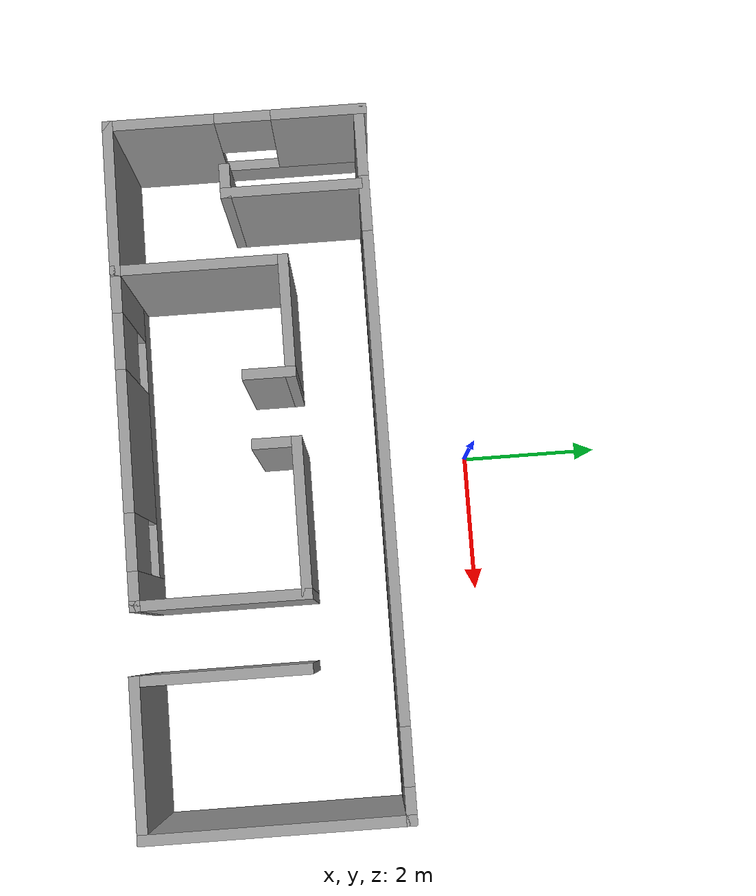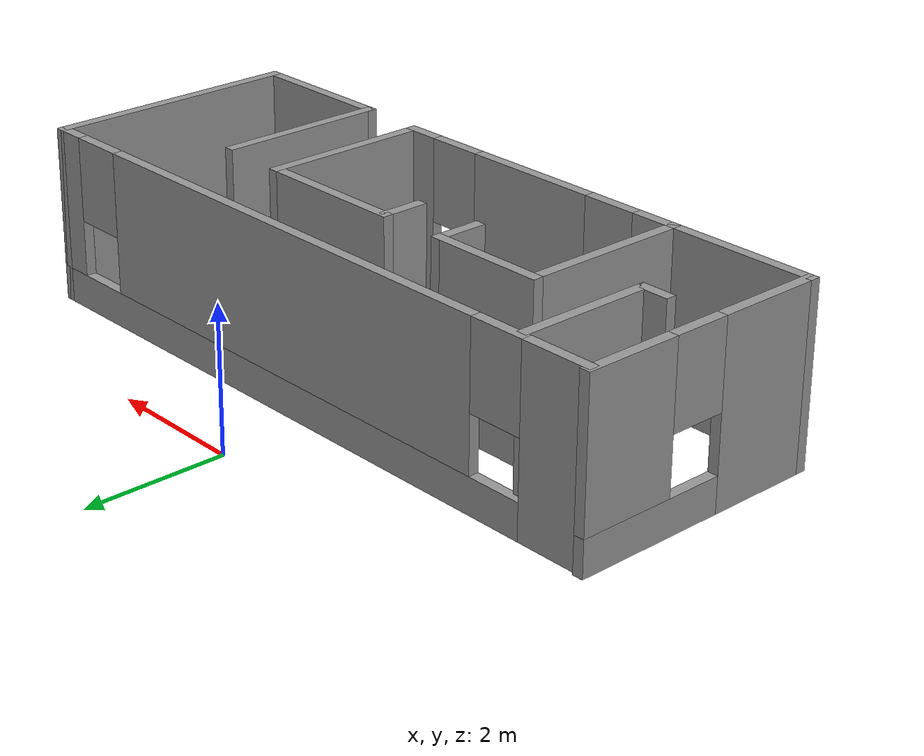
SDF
<?xml version='1.0'?>
<sdf version='1.7'>
  <model name='Hospital'>
    <pose>0.155 -2.4775 0 0 -0 0</pose>
    <link name='Wall_11'>
      <collision name='Wall_11_Collision'>
        <geometry>
          <box>
            <size>0.75 0.15 2.5</size>
          </box>
        </geometry>
        <pose>0 0 1.25 0 -0 0</pose>
      </collision>
      <visual name='Wall_11_Visual'>
        <pose>0 0 1.25 0 -0 0</pose>
        <geometry>
          <box>
            <size>0.75 0.15 2.5</size>
          </box>
        </geometry>
        <material>
          <script>
            <uri>file://media/materials/scripts/gazebo.material</uri>
            <name>Gazebo/Grey</name>
          </script>
          <ambient>1 1 1 1</ambient>
        </material>
        <meta>
          <layer>0</layer>
        </meta>
      </visual>
      <pose>-1.245 -0.3125 0 0 -0 1.5708</pose>
    </link>
    <link name='Wall_12'>
      <collision name='Wall_12_Collision'>
        <geometry>
          <box>
            <size>1.75 0.15 2.5</size>
          </box>
        </geometry>
        <pose>0 0 1.25 0 -0 0</pose>
      </collision>
      <visual name='Wall_12_Visual'>
        <pose>0 0 1.25 0 -0 0</pose>
        <geometry>
          <box>
            <size>1.75 0.15 2.5</size>
          </box>
        </geometry>
        <material>
          <script>
            <uri>file://media/materials/scripts/gazebo.material</uri>
            <name>Gazebo/Grey</name>
          </script>
          <ambient>1 1 1 1</ambient>
        </material>
        <meta>
          <layer>0</layer>
        </meta>
      </visual>
      <pose>-2.045 -0.0125 0 0 -0 3.14159</pose>
    </link>
    <link name='Wall_13'>
      <collision name='Wall_13_Collision'>
        <geometry>
          <box>
            <size>2.5 0.15 2.5</size>
          </box>
        </geometry>
        <pose>0 0 1.25 0 -0 0</pose>
      </collision>
      <visual name='Wall_13_Visual'>
        <pose>0 0 1.25 0 -0 0</pose>
        <geometry>
          <box>
            <size>2.5 0.15 2.5</size>
          </box>
        </geometry>
        <material>
          <script>
            <uri>file://media/materials/scripts/gazebo.material</uri>
            <name>Gazebo/Grey</name>
          </script>
          <ambient>1 1 1 1</ambient>
        </material>
        <meta>
          <layer>0</layer>
        </meta>
      </visual>
      <pose>-2.845 -1.1875 0 0 -0 -1.5708</pose>
    </link>
    <link name='Wall_16'>
      <collision name='Wall_16_Collision'>
        <geometry>
          <box>
            <size>2.5 0.15 2.5</size>
          </box>
        </geometry>
        <pose>0 0 1.25 0 -0 0</pose>
      </collision>
      <visual name='Wall_16_Visual'>
        <pose>0 0 1.25 0 -0 0</pose>
        <geometry>
          <box>
            <size>2.5 0.15 2.5</size>
          </box>
        </geometry>
        <material>
          <script>
            <uri>file://media/materials/scripts/gazebo.material</uri>
            <name>Gazebo/Grey</name>
          </script>
          <ambient>1 1 1 1</ambient>
        </material>
        <meta>
          <layer>0</layer>
        </meta>
      </visual>
      <pose>1.835 -1.1675 0 0 -0 -1.5708</pose>
    </link>
    <link name='Wall_17'>
      <collision name='Wall_17_Collision'>
        <geometry>
          <box>
            <size>0.15 0.15 2.5</size>
          </box>
        </geometry>
        <pose>0 0 1.25 0 -0 0</pose>
      </collision>
      <visual name='Wall_17_Visual'>
        <pose>0 0 1.25 0 -0 0</pose>
        <geometry>
          <box>
            <size>0.15 0.15 2.5</size>
          </box>
        </geometry>
        <material>
          <script>
            <uri>file://media/materials/scripts/gazebo.material</uri>
            <name>Gazebo/Grey</name>
          </script>
          <ambient>1 1 1 1</ambient>
        </material>
        <meta>
          <layer>0</layer>
        </meta>
      </visual>
      <pose>1.835 -2.3425 0 0 -0 0</pose>
    </link>
    <link name='Wall_18'>
      <pose>-0.505 -2.3525 0 0 -0 -3.13732</pose>
      <visual name='Wall_18_Visual_0'>
        <pose>-2.13763 0 1.25 0 -0 0</pose>
        <geometry>
          <box>
            <size>0.554778 0.15 2.5</size>
          </box>
        </geometry>
        <material>
          <script>
            <uri>file://media/materials/scripts/gazebo.material</uri>
            <name>Gazebo/Grey</name>
          </script>
          <ambient>1 1 1 1</ambient>
        </material>
        <meta>
          <layer>0</layer>
        </meta>
      </visual>
      <collision name='Wall_18_Collision_0'>
        <geometry>
          <box>
            <size>0.554778 0.15 2.5</size>
          </box>
        </geometry>
        <pose>-2.13763 0 1.25 0 -0 0</pose>
      </collision>
      <visual name='Wall_18_Visual_1'>
        <pose>0.277389 0 0.25 0 -0 0</pose>
        <geometry>
          <box>
            <size>4.27526 0.15 0.5</size>
          </box>
        </geometry>
        <material>
          <script>
            <uri>file://media/materials/scripts/gazebo.material</uri>
            <name>Gazebo/Grey</name>
          </script>
          <ambient>1 1 1 1</ambient>
        </material>
        <meta>
          <layer>0</layer>
        </meta>
      </visual>
      <collision name='Wall_18_Collision_1'>
        <geometry>
          <box>
            <size>4.27526 0.15 0.5</size>
          </box>
        </geometry>
        <pose>0.277389 0 0.25 0 -0 0</pose>
      </collision>
      <visual name='Wall_18_Visual_2'>
        <pose>-0.060213 0 1.5 0 -0 0</pose>
        <geometry>
          <box>
            <size>2.00006 0.15 2</size>
          </box>
        </geometry>
        <material>
          <script>
            <uri>file://media/materials/scripts/gazebo.material</uri>
            <name>Gazebo/Grey</name>
          </script>
          <ambient>1 1 1 1</ambient>
        </material>
        <meta>
          <layer>0</layer>
        </meta>
      </visual>
      <collision name='Wall_18_Collision_2'>
        <geometry>
          <box>
            <size>2.00006 0.15 2</size>
          </box>
        </geometry>
        <pose>-0.060213 0 1.5 0 -0 0</pose>
      </collision>
      <visual name='Wall_18_Visual_3'>
        <pose>2.07742 0 1.5 0 -0 0</pose>
        <geometry>
          <box>
            <size>0.675205 0.15 2</size>
          </box>
        </geometry>
        <material>
          <script>
            <uri>file://media/materials/scripts/gazebo.material</uri>
            <name>Gazebo/Grey</name>
          </script>
          <ambient>1 1 1 1</ambient>
        </material>
        <meta>
          <layer>0</layer>
        </meta>
      </visual>
      <collision name='Wall_18_Collision_3'>
        <geometry>
          <box>
            <size>0.675205 0.15 2</size>
          </box>
        </geometry>
        <pose>2.07742 0 1.5 0 -0 0</pose>
      </collision>
      <visual name='Wall_18_Visual_4'>
        <pose>-1.46024 0 1.9 0 -0 0</pose>
        <geometry>
          <box>
            <size>0.8 0.15 1.2</size>
          </box>
        </geometry>
        <material>
          <script>
            <uri>file://media/materials/scripts/gazebo.material</uri>
            <name>Gazebo/Grey</name>
          </script>
          <ambient>1 1 1 1</ambient>
        </material>
        <meta>
          <layer>0</layer>
        </meta>
      </visual>
      <collision name='Wall_18_Collision_4'>
        <geometry>
          <box>
            <size>0.8 0.15 1.2</size>
          </box>
        </geometry>
        <pose>-1.46024 0 1.9 0 -0 0</pose>
      </collision>
      <visual name='Wall_18_Visual_5'>
        <pose>1.33982 0 1.9 0 -0 0</pose>
        <geometry>
          <box>
            <size>0.8 0.15 1.2</size>
          </box>
        </geometry>
        <material>
          <script>
            <uri>file://media/materials/scripts/gazebo.material</uri>
            <name>Gazebo/Grey</name>
          </script>
          <ambient>1 1 1 1</ambient>
        </material>
        <meta>
          <layer>0</layer>
        </meta>
      </visual>
      <collision name='Wall_18_Collision_5'>
        <geometry>
          <box>
            <size>0.8 0.15 1.2</size>
          </box>
        </geometry>
        <pose>1.33982 0 1.9 0 -0 0</pose>
      </collision>
    </link>
    <link name='Wall_19'>
      <collision name='Wall_19_Collision'>
        <geometry>
          <box>
            <size>2.25 0.15 2.5</size>
          </box>
        </geometry>
        <pose>0 0 1.25 0 -0 0</pose>
      </collision>
      <visual name='Wall_19_Visual'>
        <pose>0 0 1.25 0 -0 0</pose>
        <geometry>
          <box>
            <size>2.25 0.15 2.5</size>
          </box>
        </geometry>
        <material>
          <script>
            <uri>file://media/materials/scripts/gazebo.material</uri>
            <name>Gazebo/Grey</name>
          </script>
          <ambient>1 1 1 1</ambient>
        </material>
        <meta>
          <layer>0</layer>
        </meta>
      </visual>
      <pose>-3.895 -2.3625 0 0 -0 3.14159</pose>
    </link>
    <link name='Wall_2'>
      <pose>0.02 1.1975 0 0 -0 0</pose>
      <visual name='Wall_2_Visual_0'>
        <pose>-4.4925 0 1.25 0 -0 0</pose>
        <geometry>
          <box>
            <size>1.015 0.15 2.5</size>
          </box>
        </geometry>
        <material>
          <script>
            <uri>file://media/materials/scripts/gazebo.material</uri>
            <name>Gazebo/Grey</name>
          </script>
          <ambient>1 1 1 1</ambient>
        </material>
        <meta>
          <layer>0</layer>
        </meta>
      </visual>
      <collision name='Wall_2_Collision_0'>
        <geometry>
          <box>
            <size>1.015 0.15 2.5</size>
          </box>
        </geometry>
        <pose>-4.4925 0 1.25 0 -0 0</pose>
      </collision>
      <visual name='Wall_2_Visual_1'>
        <pose>0.5075 0 0.25 0 -0 0</pose>
        <geometry>
          <box>
            <size>8.985 0.15 0.5</size>
          </box>
        </geometry>
        <material>
          <script>
            <uri>file://media/materials/scripts/gazebo.material</uri>
            <name>Gazebo/Grey</name>
          </script>
          <ambient>1 1 1 1</ambient>
        </material>
        <meta>
          <layer>0</layer>
        </meta>
      </visual>
      <collision name='Wall_2_Collision_1'>
        <geometry>
          <box>
            <size>8.985 0.15 0.5</size>
          </box>
        </geometry>
        <pose>0.5075 0 0.25 0 -0 0</pose>
      </collision>
      <visual name='Wall_2_Visual_2'>
        <pose>0.25 0 1.5 0 -0 0</pose>
        <geometry>
          <box>
            <size>6.87 0.15 2</size>
          </box>
        </geometry>
        <material>
          <script>
            <uri>file://media/materials/scripts/gazebo.material</uri>
            <name>Gazebo/Grey</name>
          </script>
          <ambient>1 1 1 1</ambient>
        </material>
        <meta>
          <layer>0</layer>
        </meta>
      </visual>
      <collision name='Wall_2_Collision_2'>
        <geometry>
          <box>
            <size>6.87 0.15 2</size>
          </box>
        </geometry>
        <pose>0.25 0 1.5 0 -0 0</pose>
      </collision>
      <visual name='Wall_2_Visual_3'>
        <pose>4.7425 0 1.5 0 -0 0</pose>
        <geometry>
          <box>
            <size>0.515 0.15 2</size>
          </box>
        </geometry>
        <material>
          <script>
            <uri>file://media/materials/scripts/gazebo.material</uri>
            <name>Gazebo/Grey</name>
          </script>
          <ambient>1 1 1 1</ambient>
        </material>
        <meta>
          <layer>0</layer>
        </meta>
      </visual>
      <collision name='Wall_2_Collision_3'>
        <geometry>
          <box>
            <size>0.515 0.15 2</size>
          </box>
        </geometry>
        <pose>4.7425 0 1.5 0 -0 0</pose>
      </collision>
      <visual name='Wall_2_Visual_4'>
        <pose>-3.585 0 1.9 0 -0 0</pose>
        <geometry>
          <box>
            <size>0.8 0.15 1.2</size>
          </box>
        </geometry>
        <material>
          <script>
            <uri>file://media/materials/scripts/gazebo.material</uri>
            <name>Gazebo/Grey</name>
          </script>
          <ambient>1 1 1 1</ambient>
        </material>
        <meta>
          <layer>0</layer>
        </meta>
      </visual>
      <collision name='Wall_2_Collision_4'>
        <geometry>
          <box>
            <size>0.8 0.15 1.2</size>
          </box>
        </geometry>
        <pose>-3.585 0 1.9 0 -0 0</pose>
      </collision>
      <visual name='Wall_2_Visual_5'>
        <pose>4.085 0 1.9 0 -0 0</pose>
        <geometry>
          <box>
            <size>0.8 0.15 1.2</size>
          </box>
        </geometry>
        <material>
          <script>
            <uri>file://media/materials/scripts/gazebo.material</uri>
            <name>Gazebo/Grey</name>
          </script>
          <ambient>1 1 1 1</ambient>
        </material>
        <meta>
          <layer>0</layer>
        </meta>
      </visual>
      <collision name='Wall_2_Collision_5'>
        <geometry>
          <box>
            <size>0.8 0.15 1.2</size>
          </box>
        </geometry>
        <pose>4.085 0 1.9 0 -0 0</pose>
      </collision>
    </link>
    <link name='Wall_20'>
      <pose>-4.945 -0.5625 0 0 -0 1.5708</pose>
      <visual name='Wall_20_Visual_0'>
        <pose>-1.0825 0 1.25 0 -0 0</pose>
        <geometry>
          <box>
            <size>1.585 0.15 2.5</size>
          </box>
        </geometry>
        <material>
          <script>
            <uri>file://media/materials/scripts/gazebo.material</uri>
            <name>Gazebo/Grey</name>
          </script>
          <ambient>1 1 1 1</ambient>
        </material>
        <meta>
          <layer>0</layer>
        </meta>
      </visual>
      <collision name='Wall_20_Collision_0'>
        <geometry>
          <box>
            <size>1.585 0.15 2.5</size>
          </box>
        </geometry>
        <pose>-1.0825 0 1.25 0 -0 0</pose>
      </collision>
      <visual name='Wall_20_Visual_1'>
        <pose>0.7925 0 0.25 0 -0 0</pose>
        <geometry>
          <box>
            <size>2.165 0.15 0.5</size>
          </box>
        </geometry>
        <material>
          <script>
            <uri>file://media/materials/scripts/gazebo.material</uri>
            <name>Gazebo/Grey</name>
          </script>
          <ambient>1 1 1 1</ambient>
        </material>
        <meta>
          <layer>0</layer>
        </meta>
      </visual>
      <collision name='Wall_20_Collision_1'>
        <geometry>
          <box>
            <size>2.165 0.15 0.5</size>
          </box>
        </geometry>
        <pose>0.7925 0 0.25 0 -0 0</pose>
      </collision>
      <visual name='Wall_20_Visual_2'>
        <pose>1.1925 0 1.5 0 -0 0</pose>
        <geometry>
          <box>
            <size>1.365 0.15 2</size>
          </box>
        </geometry>
        <material>
          <script>
            <uri>file://media/materials/scripts/gazebo.material</uri>
            <name>Gazebo/Grey</name>
          </script>
          <ambient>1 1 1 1</ambient>
        </material>
        <meta>
          <layer>0</layer>
        </meta>
      </visual>
      <collision name='Wall_20_Collision_2'>
        <geometry>
          <box>
            <size>1.365 0.15 2</size>
          </box>
        </geometry>
        <pose>1.1925 0 1.5 0 -0 0</pose>
      </collision>
      <visual name='Wall_20_Visual_3'>
        <pose>0.11 0 1.9 0 -0 0</pose>
        <geometry>
          <box>
            <size>0.8 0.15 1.2</size>
          </box>
        </geometry>
        <material>
          <script>
            <uri>file://media/materials/scripts/gazebo.material</uri>
            <name>Gazebo/Grey</name>
          </script>
          <ambient>1 1 1 1</ambient>
        </material>
        <meta>
          <layer>0</layer>
        </meta>
      </visual>
      <collision name='Wall_20_Collision_3'>
        <geometry>
          <box>
            <size>0.8 0.15 1.2</size>
          </box>
        </geometry>
        <pose>0.11 0 1.9 0 -0 0</pose>
      </collision>
    </link>
    <link name='Wall_22'>
      <collision name='Wall_22_Collision'>
        <geometry>
          <box>
            <size>2 0.15 2.5</size>
          </box>
        </geometry>
        <pose>0 0 1.25 0 -0 0</pose>
      </collision>
      <visual name='Wall_22_Visual'>
        <pose>0 0 1.25 0 -0 0</pose>
        <geometry>
          <box>
            <size>2 0.15 2.5</size>
          </box>
        </geometry>
        <material>
          <script>
            <uri>file://media/materials/scripts/gazebo.material</uri>
            <name>Gazebo/Grey</name>
          </script>
          <ambient>1 1 1 1</ambient>
        </material>
        <meta>
          <layer>0</layer>
        </meta>
      </visual>
      <pose>-3.855 0.1725 0 0 -0 -1.5708</pose>
    </link>
    <link name='Wall_23'>
      <collision name='Wall_23_Collision'>
        <geometry>
          <box>
            <size>0.5 0.15 2.5</size>
          </box>
        </geometry>
        <pose>0 0 1.25 0 -0 0</pose>
      </collision>
      <visual name='Wall_23_Visual'>
        <pose>0 0 1.25 0 -0 0</pose>
        <geometry>
          <box>
            <size>0.5 0.15 2.5</size>
          </box>
        </geometry>
        <material>
          <script>
            <uri>file://media/materials/scripts/gazebo.material</uri>
            <name>Gazebo/Grey</name>
          </script>
          <ambient>1 1 1 1</ambient>
        </material>
        <meta>
          <layer>0</layer>
        </meta>
      </visual>
      <pose>-4.03 -0.7525 0 0 -0 3.14159</pose>
    </link>
    <link name='Wall_3'>
      <collision name='Wall_3_Collision'>
        <geometry>
          <box>
            <size>3.75 0.15 2.5</size>
          </box>
        </geometry>
        <pose>0 0 1.25 0 -0 0</pose>
      </collision>
      <visual name='Wall_3_Visual'>
        <pose>0 0 1.25 0 -0 0</pose>
        <geometry>
          <box>
            <size>3.75 0.15 2.5</size>
          </box>
        </geometry>
        <material>
          <script>
            <uri>file://media/materials/scripts/gazebo.material</uri>
            <name>Gazebo/Grey</name>
          </script>
          <ambient>1 1 1 1</ambient>
        </material>
        <meta>
          <layer>0</layer>
        </meta>
      </visual>
      <pose>4.945 -0.6025 0 0 -0 -1.5708</pose>
    </link>
    <link name='Wall_4'>
      <collision name='Wall_4_Collision'>
        <geometry>
          <box>
            <size>2.25 0.15 2.5</size>
          </box>
        </geometry>
        <pose>0 0 1.25 0 -0 0</pose>
      </collision>
      <visual name='Wall_4_Visual'>
        <pose>0 0 1.25 0 -0 0</pose>
        <geometry>
          <box>
            <size>2.25 0.15 2.5</size>
          </box>
        </geometry>
        <material>
          <script>
            <uri>file://media/materials/scripts/gazebo.material</uri>
            <name>Gazebo/Grey</name>
          </script>
          <ambient>1 1 1 1</ambient>
        </material>
        <meta>
          <layer>0</layer>
        </meta>
      </visual>
      <pose>3.895 -2.4025 0 0 -0 3.14159</pose>
    </link>
    <link name='Wall_5'>
      <collision name='Wall_5_Collision'>
        <geometry>
          <box>
            <size>2.5 0.15 2.5</size>
          </box>
        </geometry>
        <pose>0 0 1.25 0 -0 0</pose>
      </collision>
      <visual name='Wall_5_Visual'>
        <pose>0 0 1.25 0 -0 0</pose>
        <geometry>
          <box>
            <size>2.5 0.15 2.5</size>
          </box>
        </geometry>
        <material>
          <script>
            <uri>file://media/materials/scripts/gazebo.material</uri>
            <name>Gazebo/Grey</name>
          </script>
          <ambient>1 1 1 1</ambient>
        </material>
        <meta>
          <layer>0</layer>
        </meta>
      </visual>
      <pose>2.845 -1.2275 0 0 -0 1.5708</pose>
    </link>
    <link name='Wall_8'>
      <collision name='Wall_8_Collision'>
        <geometry>
          <box>
            <size>2.25 0.15 2.5</size>
          </box>
        </geometry>
        <pose>0 0 1.25 0 -0 0</pose>
      </collision>
      <visual name='Wall_8_Visual'>
        <pose>0 0 1.25 0 -0 0</pose>
        <geometry>
          <box>
            <size>2.25 0.15 2.5</size>
          </box>
        </geometry>
        <material>
          <script>
            <uri>file://media/materials/scripts/gazebo.material</uri>
            <name>Gazebo/Grey</name>
          </script>
          <ambient>1 1 1 1</ambient>
        </material>
        <meta>
          <layer>0</layer>
        </meta>
      </visual>
      <pose>0.785 0.0075 0 0 -0 3.14159</pose>
    </link>
    <link name='Wall_9'>
      <collision name='Wall_9_Collision'>
        <geometry>
          <box>
            <size>0.65 0.15 2.5</size>
          </box>
        </geometry>
        <pose>0 0 1.25 0 -0 0</pose>
      </collision>
      <visual name='Wall_9_Visual'>
        <pose>0 0 1.25 0 -0 0</pose>
        <geometry>
          <box>
            <size>0.65 0.15 2.5</size>
          </box>
        </geometry>
        <material>
          <script>
            <uri>file://media/materials/scripts/gazebo.material</uri>
            <name>Gazebo/Grey</name>
          </script>
          <ambient>1 1 1 1</ambient>
        </material>
        <meta>
          <layer>0</layer>
        </meta>
      </visual>
      <pose>-0.265 -0.2925 0 0 -0 -1.5708</pose>
    </link>
    <static>1</static>
  </model>
</sdf>
